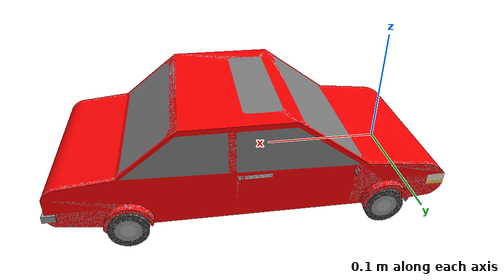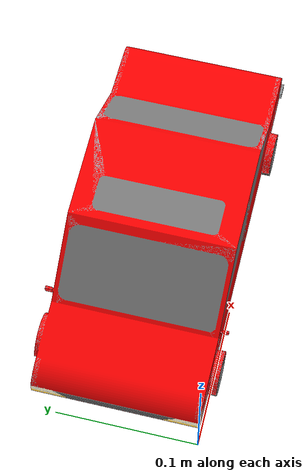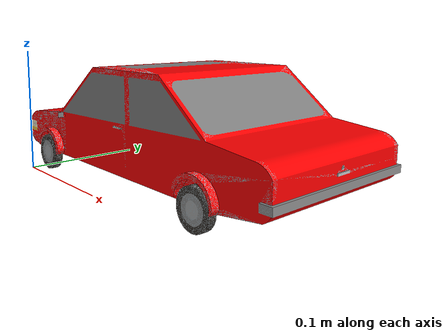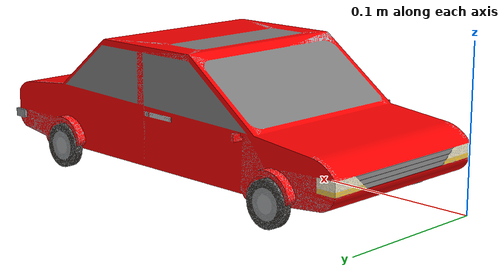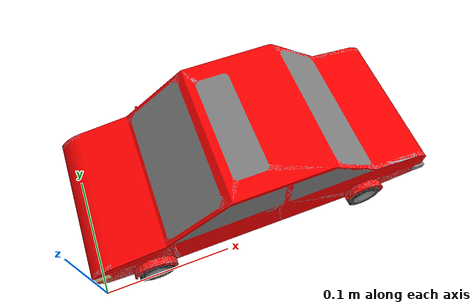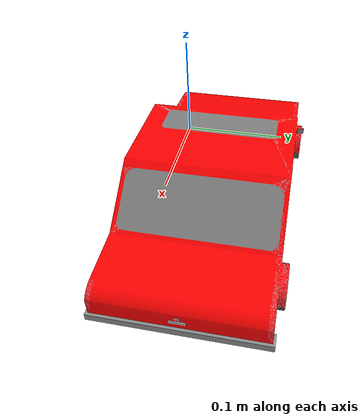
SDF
<?xml version="1.0" ?>
<sdf version="1.6">
  <model name="car">
    <static>true</static>
    <link name="link">
      <collision name="collision">
        <geometry>
          <mesh>
            <scale>0.05 0.05 0.05</scale>
            <uri>model://car/meshes/model.dae</uri>
          </mesh>
        </geometry>
      </collision>
      <visual name="visual">
        <geometry>
          <mesh>
            <scale>0.05 0.05 0.05</scale>
            <uri>model://car/meshes/model.dae</uri>
          </mesh>
        </geometry>
      </visual>
    </link>
  </model>
</sdf>
